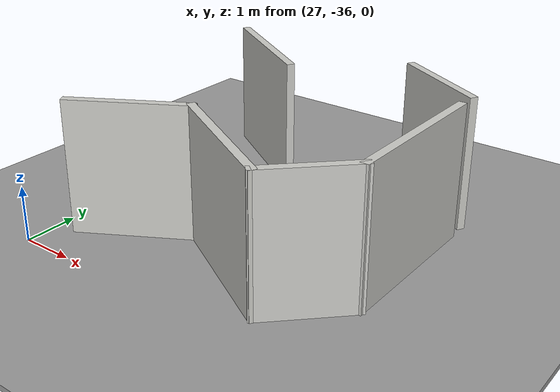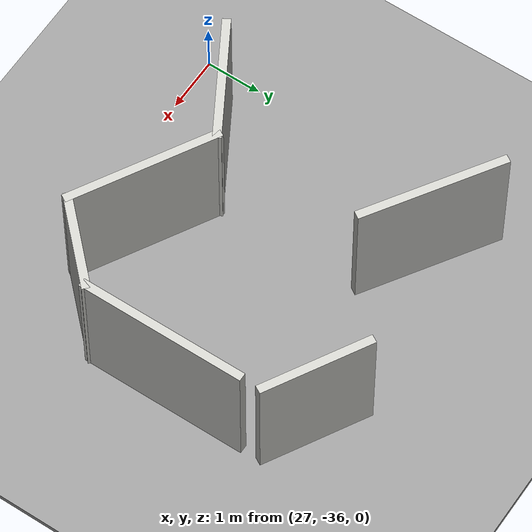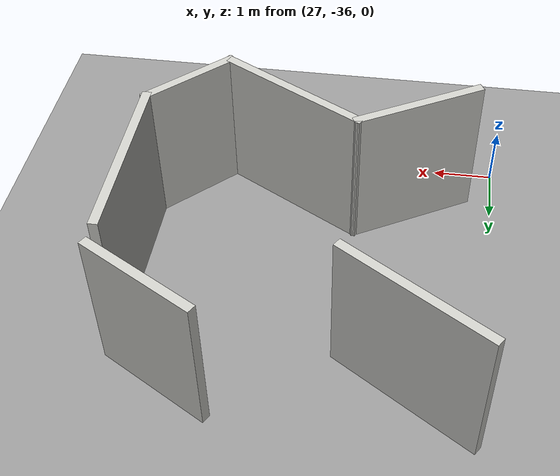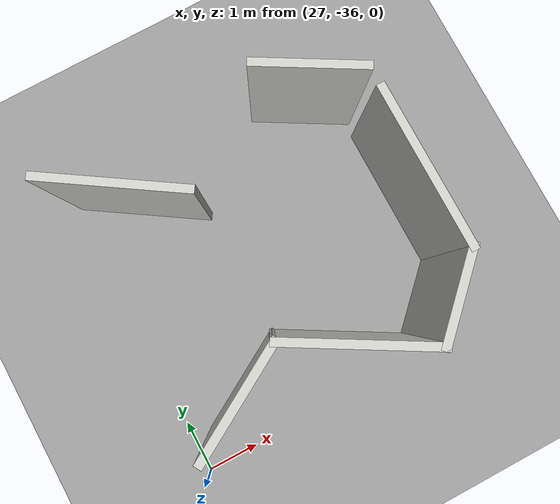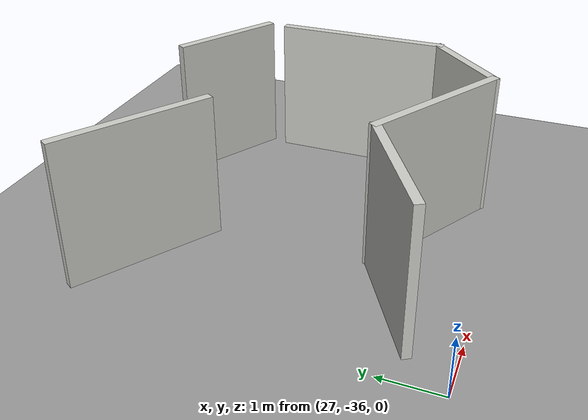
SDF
<sdf version="1.6">
 <world name="default">
  <model name="ground_plane">
   <pose>50 50 0 0 -0 0</pose>
   <static>1</static>
   <link name="link">
    <collision name="collision">
     <geometry><plane><normal>0 0 1</normal><size>100 100</size></plane></geometry>
     <surface><friction><ode><mu>100</mu><mu2>50</mu2></ode></friction></surface>
    </collision>
    <visual name="visual">
     <cast_shadows>0</cast_shadows>
     <geometry><plane><normal>0 0 1</normal><size>100 100</size></plane></geometry>
     <material>
      <script><uri>file://media/materials/scripts/gazebo.material</uri><name>Gazebo/Grey</name></script>
     </material>
    </visual>
   </link>
  </model>
  <model name="ground_plane_2">
   <static>1</static>
   <link name="link">
    <collision name="collision">
     <geometry><plane><normal>0 0 1</normal><size>100 100</size></plane></geometry>
     <surface><friction><ode><mu>100</mu><mu2>50</mu2></ode></friction></surface>
    </collision>
    <visual name="visual">
     <cast_shadows>0</cast_shadows>
     <geometry><plane><normal>0 0 1</normal><size>100 100</size></plane></geometry>
     <material>
      <script><uri>file://media/materials/scripts/gazebo.material</uri><name>Gazebo/Grey</name></script>
     </material>
    </visual>
   </link>
   <pose>50 -50 0 0 -0 0</pose>
  </model>
  <model name="maze_1">
   <pose>17.3845 3.82743 0 0 -0 1.57331</pose>
   <link name="Wall_44">
    <collision name="Wall_44_Collision">
     <geometry><box><size>2 0.15 2.5</size></box></geometry>
     <pose>0 0 1.25 0 -0 0</pose>
    </collision>
    <visual name="Wall_44_Visual">
     <pose>0 0 1.25 0 -0 0</pose>
     <geometry><box><size>2 0.15 2.5</size></box></geometry>
     <material>
      <script><uri>file://media/materials/scripts/gazebo.material</uri><name>Gazebo/CeilingTiled</name></script>
      <ambient>1 1 1 1</ambient>
     </material>
     <meta><layer>0</layer></meta>
    </visual>
    <pose>-34.5307 -14.3961 0 0 -0 -2.0944</pose>
   </link>
   <link name="Wall_46">
    <collision name="Wall_46_Collision">
     <geometry><box><size>3 0.15 2.5</size></box></geometry>
     <pose>0 0 1.25 0 -0 0</pose>
    </collision>
    <visual name="Wall_46_Visual">
     <pose>0 0 1.25 0 -0 0</pose>
     <geometry><box><size>3 0.15 2.5</size></box></geometry>
     <material>
      <script><uri>file://media/materials/scripts/gazebo.material</uri><name>Gazebo/CeilingTiled</name></script>
      <ambient>1 1 1 1</ambient>
     </material>
     <meta><layer>0</layer></meta>
    </visual>
    <pose>-36.8393 -15.2116 0 0 -0 3.14159</pose>
   </link>
   <link name="Wall_47">
    <collision name="Wall_47_Collision">
     <geometry><box><size>1.75 0.15 2.5</size></box></geometry>
     <pose>0 0 1.25 0 -0 0</pose>
    </collision>
    <visual name="Wall_47_Visual">
     <pose>0 0 1.25 0 -0 0</pose>
     <geometry><box><size>1.75 0.15 2.5</size></box></geometry>
     <material>
      <script><uri>file://media/materials/scripts/gazebo.material</uri><name>Gazebo/CeilingTiled</name></script>
      <ambient>1 1 1 1</ambient>
     </material>
     <meta><layer>0</layer></meta>
    </visual>
    <pose>-38.8299 -14.6459 0 0 -0 2.35619</pose>
   </link>
   <link name="Wall_48">
    <collision name="Wall_48_Collision">
     <geometry><box><size>2.75 0.15 2.5</size></box></geometry>
     <pose>0 0 1.25 0 -0 0</pose>
    </collision>
    <visual name="Wall_48_Visual">
     <pose>0 0 1.25 0 -0 0</pose>
     <geometry><box><size>2.75 0.15 2.5</size></box></geometry>
     <material>
      <script><uri>file://media/materials/scripts/gazebo.material</uri><name>Gazebo/CeilingTiled</name></script>
      <ambient>1 1 1 1</ambient>
     </material>
     <meta><layer>0</layer></meta>
    </visual>
    <pose>-38.7456 -12.9544 0 0 -0 1.0472</pose>
   </link>
   <link name="Wall_49">
    <collision name="Wall_49_Collision">
     <geometry><box><size>2.25 0.15 2.5</size></box></geometry>
     <pose>0 0 1.25 0 -0 0</pose>
    </collision>
    <visual name="Wall_49_Visual">
     <pose>0 0 1.25 0 -0 0</pose>
     <geometry><box><size>2.25 0.15 2.5</size></box></geometry>
     <material>
      <script><uri>file://media/materials/scripts/gazebo.material</uri><name>Gazebo/CeilingTiled</name></script>
      <ambient>1 1 1 1</ambient>
     </material>
     <meta><layer>0</layer></meta>
    </visual>
    <pose>-38.6206 -10.9193 0 0 -0 2.0944</pose>
   </link>
   <link name="Wall_59">
    <collision name="Wall_59_Collision">
     <geometry><box><size>2.62909 0.15 2.5</size></box></geometry>
     <pose>0 0 1.25 0 -0 0</pose>
    </collision>
    <visual name="Wall_59_Visual">
     <pose>0 0 1.25 0 -0 0</pose>
     <geometry><box><size>2.62909 0.15 2.5</size></box></geometry>
     <material>
      <script><uri>file://media/materials/scripts/gazebo.material</uri><name>Gazebo/CeilingTiled</name></script>
      <ambient>1 1 1 1</ambient>
     </material>
     <meta><layer>0</layer></meta>
    </visual>
    <pose>-34.7384 -10.755 0 0 -0 0.994084</pose>
   </link>
   <static>1</static>
  </model>
 </world>
</sdf>
